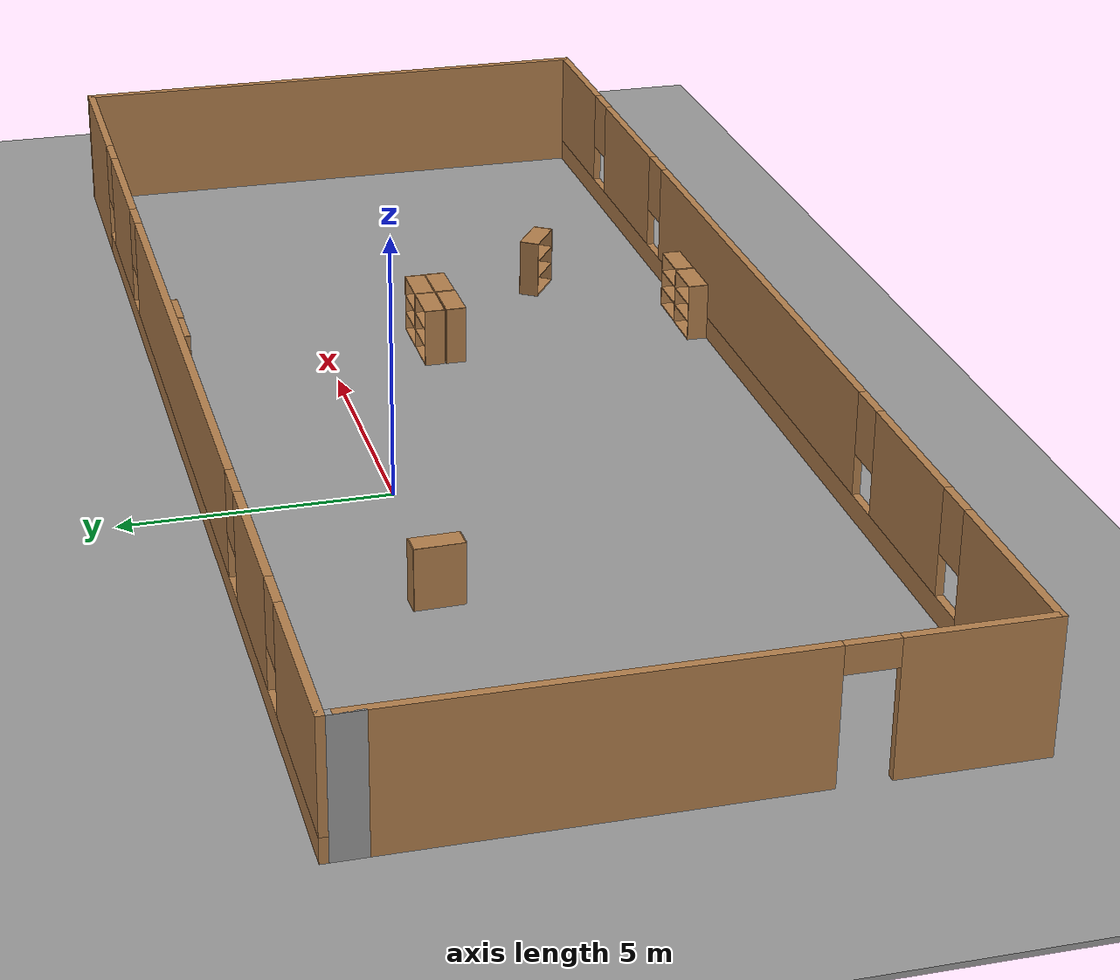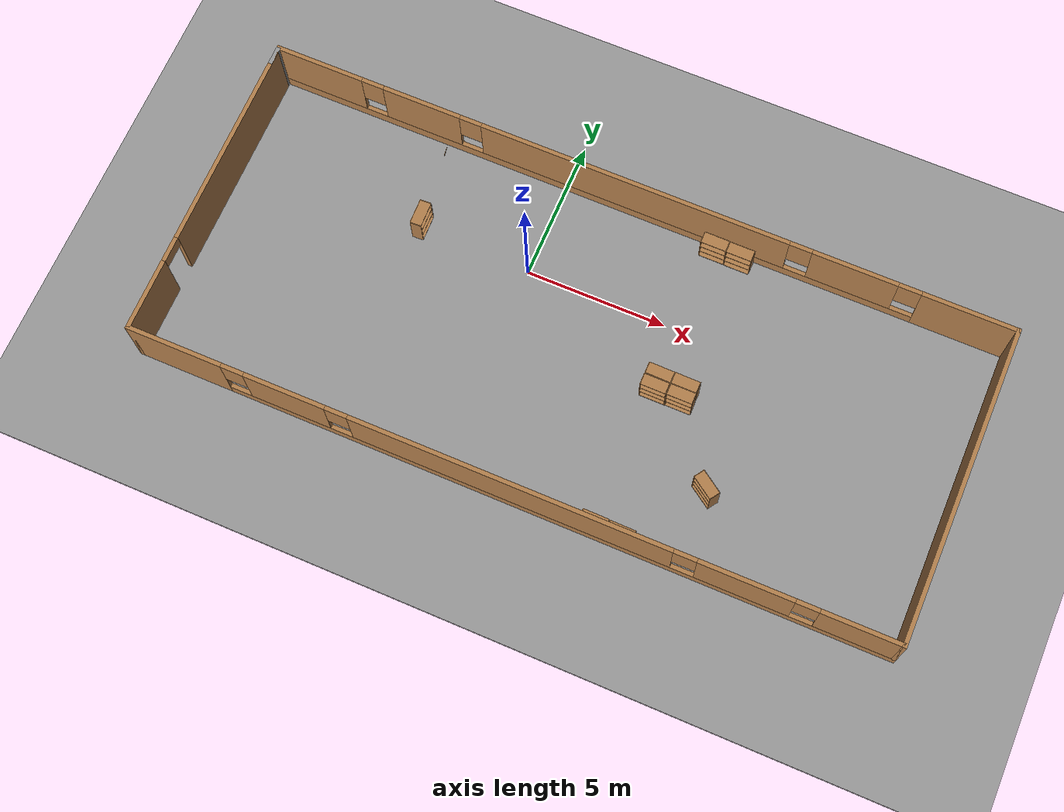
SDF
<sdf version="1.7">
 <world name="default">
  <model name="ground_plane">
   <static>1</static>
   <link name="link">
    <collision name="collision">
     <geometry><plane><normal>0 0 1</normal><size>100 100</size></plane></geometry>
     <surface><friction><ode><mu>100</mu><mu2>50</mu2></ode></friction></surface>
    </collision>
    <visual name="visual">
     <cast_shadows>0</cast_shadows>
     <geometry><plane><normal>0 0 1</normal><size>100 100</size></plane></geometry>
     <material>
      <script><uri>file://media/materials/scripts/gazebo.material</uri><name>Gazebo/Grey</name></script>
     </material>
    </visual>
   </link>
  </model>
  <model name="Library">
   <pose>2.58107 -2.1364 0 0 -0 0</pose>
   <link name="Wall_0">
    <pose>-13.3 -0.125 0 0 -0 -1.5708</pose>
    <visual name="Wall_0_Visual_0">
     <pose>-1.74308 0 1.25 0 -0 0</pose>
     <geometry><box><size>7.51384 0.15 2.5</size></box></geometry>
     <material>
      <script><uri>file://media/materials/scripts/gazebo.material</uri><name>Gazebo/Wood</name></script>
      <ambient>1 1 1 1</ambient>
     </material>
     <meta><layer>0</layer></meta>
    </visual>
    <collision name="Wall_0_Collision_0">
     <geometry><box><size>7.51384 0.15 2.5</size></box></geometry>
     <pose>-1.74308 0 1.25 0 -0 0</pose>
    </collision>
    <visual name="Wall_0_Visual_1">
     <pose>4.20692 0 1.25 0 -0 0</pose>
     <geometry><box><size>2.58616 0.15 2.5</size></box></geometry>
     <material>
      <script><uri>file://media/materials/scripts/gazebo.material</uri><name>Gazebo/Wood</name></script>
      <ambient>1 1 1 1</ambient>
     </material>
     <meta><layer>0</layer></meta>
    </visual>
    <collision name="Wall_0_Collision_1">
     <geometry><box><size>2.58616 0.15 2.5</size></box></geometry>
     <pose>4.20692 0 1.25 0 -0 0</pose>
    </collision>
    <visual name="Wall_0_Visual_2">
     <pose>2.46384 0 2.25 0 -0 0</pose>
     <geometry><box><size>0.9 0.15 0.5</size></box></geometry>
     <material>
      <script><uri>file://media/materials/scripts/gazebo.material</uri><name>Gazebo/Wood</name></script>
      <ambient>1 1 1 1</ambient>
     </material>
     <meta><layer>0</layer></meta>
    </visual>
    <collision name="Wall_0_Collision_2">
     <geometry><box><size>0.9 0.15 0.5</size></box></geometry>
     <pose>2.46384 0 2.25 0 -0 0</pose>
    </collision>
   </link>
   <link name="Wall_1">
    <pose>0 -5.55 0 0 -0 0</pose>
    <visual name="Wall_1_Visual_0">
     <pose>-11.6563 0 1.25 0 -0 0</pose>
     <geometry><box><size>3.43737 0.15 2.5</size></box></geometry>
     <material>
      <script><uri>file://media/materials/scripts/gazebo.material</uri><name>Gazebo/Wood</name></script>
      <ambient>1 1 1 1</ambient>
     </material>
     <meta><layer>0</layer></meta>
    </visual>
    <collision name="Wall_1_Collision_0">
     <geometry><box><size>3.43737 0.15 2.5</size></box></geometry>
     <pose>-11.6563 0 1.25 0 -0 0</pose>
    </collision>
    <visual name="Wall_1_Visual_1">
     <pose>1.71868 0 0.25 0 -0 0</pose>
     <geometry><box><size>23.3126 0.15 0.5</size></box></geometry>
     <material>
      <script><uri>file://media/materials/scripts/gazebo.material</uri><name>Gazebo/Wood</name></script>
      <ambient>1 1 1 1</ambient>
     </material>
     <meta><layer>0</layer></meta>
    </visual>
    <collision name="Wall_1_Collision_1">
     <geometry><box><size>23.3126 0.15 0.5</size></box></geometry>
     <pose>1.71868 0 0.25 0 -0 0</pose>
    </collision>
    <visual name="Wall_1_Visual_2">
     <pose>-7.6969 0 1.5 0 -0 0</pose>
     <geometry><box><size>2.88146 0.15 2</size></box></geometry>
     <material>
      <script><uri>file://media/materials/scripts/gazebo.material</uri><name>Gazebo/Wood</name></script>
      <ambient>1 1 1 1</ambient>
     </material>
     <meta><layer>0</layer></meta>
    </visual>
    <collision name="Wall_1_Collision_2">
     <geometry><box><size>2.88146 0.15 2</size></box></geometry>
     <pose>-7.6969 0 1.5 0 -0 0</pose>
    </collision>
    <visual name="Wall_1_Visual_3">
     <pose>0.131252 0 1.5 0 -0 0</pose>
     <geometry><box><size>11.1749 0.15 2</size></box></geometry>
     <material>
      <script><uri>file://media/materials/scripts/gazebo.material</uri><name>Gazebo/Wood</name></script>
      <ambient>1 1 1 1</ambient>
     </material>
     <meta><layer>0</layer></meta>
    </visual>
    <collision name="Wall_1_Collision_3">
     <geometry><box><size>11.1749 0.15 2</size></box></geometry>
     <pose>0.131252 0 1.5 0 -0 0</pose>
    </collision>
    <visual name="Wall_1_Visual_4">
     <pose>8.14146 0 1.5 0 -0 0</pose>
     <geometry><box><size>3.24556 0.15 2</size></box></geometry>
     <material>
      <script><uri>file://media/materials/scripts/gazebo.material</uri><name>Gazebo/Wood</name></script>
      <ambient>1 1 1 1</ambient>
     </material>
     <meta><layer>0</layer></meta>
    </visual>
    <collision name="Wall_1_Collision_4">
     <geometry><box><size>3.24556 0.15 2</size></box></geometry>
     <pose>8.14146 0 1.5 0 -0 0</pose>
    </collision>
    <visual name="Wall_1_Visual_5">
     <pose>11.9696 0 1.5 0 -0 0</pose>
     <geometry><box><size>2.81076 0.15 2</size></box></geometry>
     <material>
      <script><uri>file://media/materials/scripts/gazebo.material</uri><name>Gazebo/Wood</name></script>
      <ambient>1 1 1 1</ambient>
     </material>
     <meta><layer>0</layer></meta>
    </visual>
    <collision name="Wall_1_Collision_5">
     <geometry><box><size>2.81076 0.15 2</size></box></geometry>
     <pose>11.9696 0 1.5 0 -0 0</pose>
    </collision>
    <visual name="Wall_1_Visual_6">
     <pose>-9.53763 0 1.9 0 -0 0</pose>
     <geometry><box><size>0.8 0.15 1.2</size></box></geometry>
     <material>
      <script><uri>file://media/materials/scripts/gazebo.material</uri><name>Gazebo/Wood</name></script>
      <ambient>1 1 1 1</ambient>
     </material>
     <meta><layer>0</layer></meta>
    </visual>
    <collision name="Wall_1_Collision_6">
     <geometry><box><size>0.8 0.15 1.2</size></box></geometry>
     <pose>-9.53763 0 1.9 0 -0 0</pose>
    </collision>
    <visual name="Wall_1_Visual_7">
     <pose>-5.85617 0 1.9 0 -0 0</pose>
     <geometry><box><size>0.8 0.15 1.2</size></box></geometry>
     <material>
      <script><uri>file://media/materials/scripts/gazebo.material</uri><name>Gazebo/Wood</name></script>
      <ambient>1 1 1 1</ambient>
     </material>
     <meta><layer>0</layer></meta>
    </visual>
    <collision name="Wall_1_Collision_7">
     <geometry><box><size>0.8 0.15 1.2</size></box></geometry>
     <pose>-5.85617 0 1.9 0 -0 0</pose>
    </collision>
    <visual name="Wall_1_Visual_8">
     <pose>6.11868 0 1.9 0 -0 0</pose>
     <geometry><box><size>0.8 0.15 1.2</size></box></geometry>
     <material>
      <script><uri>file://media/materials/scripts/gazebo.material</uri><name>Gazebo/Wood</name></script>
      <ambient>1 1 1 1</ambient>
     </material>
     <meta><layer>0</layer></meta>
    </visual>
    <collision name="Wall_1_Collision_8">
     <geometry><box><size>0.8 0.15 1.2</size></box></geometry>
     <pose>6.11868 0 1.9 0 -0 0</pose>
    </collision>
    <visual name="Wall_1_Visual_9">
     <pose>10.1642 0 1.9 0 -0 0</pose>
     <geometry><box><size>0.8 0.15 1.2</size></box></geometry>
     <material>
      <script><uri>file://media/materials/scripts/gazebo.material</uri><name>Gazebo/Wood</name></script>
      <ambient>1 1 1 1</ambient>
     </material>
     <meta><layer>0</layer></meta>
    </visual>
    <collision name="Wall_1_Collision_9">
     <geometry><box><size>0.8 0.15 1.2</size></box></geometry>
     <pose>10.1642 0 1.9 0 -0 0</pose>
    </collision>
   </link>
   <link name="Wall_2">
    <collision name="Wall_2_Collision">
     <geometry><box><size>11.25 0.15 2.5</size></box></geometry>
     <pose>0 0 1.25 0 -0 0</pose>
    </collision>
    <visual name="Wall_2_Visual">
     <pose>0 0 1.25 0 -0 0</pose>
     <geometry><box><size>11.25 0.15 2.5</size></box></geometry>
     <material>
      <script><uri>file://media/materials/scripts/gazebo.material</uri><name>Gazebo/Wood</name></script>
      <ambient>1 1 1 1</ambient>
     </material>
     <meta><layer>0</layer></meta>
    </visual>
    <pose>13.3 -0 0 0 -0 1.5708</pose>
   </link>
   <link name="Wall_3">
    <pose>0 5.55 0 0 -0 3.14159</pose>
    <visual name="Wall_3_Visual_0">
     <pose>-11.6864 0 1.25 0 -0 0</pose>
     <geometry><box><size>3.37714 0.15 2.5</size></box></geometry>
     <material>
      <script><uri>file://media/materials/scripts/gazebo.material</uri><name>Gazebo/Wood</name></script>
      <ambient>1 1 1 1</ambient>
     </material>
     <meta><layer>0</layer></meta>
    </visual>
    <collision name="Wall_3_Collision_0">
     <geometry><box><size>3.37714 0.15 2.5</size></box></geometry>
     <pose>-11.6864 0 1.25 0 -0 0</pose>
    </collision>
    <visual name="Wall_3_Visual_1">
     <pose>1.68857 0 0.25 0 -0 0</pose>
     <geometry><box><size>23.3729 0.15 0.5</size></box></geometry>
     <material>
      <script><uri>file://media/materials/scripts/gazebo.material</uri><name>Gazebo/Wood</name></script>
      <ambient>1 1 1 1</ambient>
     </material>
     <meta><layer>0</layer></meta>
    </visual>
    <collision name="Wall_3_Collision_1">
     <geometry><box><size>23.3729 0.15 0.5</size></box></geometry>
     <pose>1.68857 0 0.25 0 -0 0</pose>
    </collision>
    <visual name="Wall_3_Visual_2">
     <pose>-7.69644 0 1.5 0 -0 0</pose>
     <geometry><box><size>3.00282 0.15 2</size></box></geometry>
     <material>
      <script><uri>file://media/materials/scripts/gazebo.material</uri><name>Gazebo/Wood</name></script>
      <ambient>1 1 1 1</ambient>
     </material>
     <meta><layer>0</layer></meta>
    </visual>
    <collision name="Wall_3_Collision_2">
     <geometry><box><size>3.00282 0.15 2</size></box></geometry>
     <pose>-7.69644 0 1.5 0 -0 0</pose>
    </collision>
    <visual name="Wall_3_Visual_3">
     <pose>0.151937 0 1.5 0 -0 0</pose>
     <geometry><box><size>11.0939 0.15 2</size></box></geometry>
     <material>
      <script><uri>file://media/materials/scripts/gazebo.material</uri><name>Gazebo/Wood</name></script>
      <ambient>1 1 1 1</ambient>
     </material>
     <meta><layer>0</layer></meta>
    </visual>
    <collision name="Wall_3_Collision_3">
     <geometry><box><size>11.0939 0.15 2</size></box></geometry>
     <pose>0.151937 0 1.5 0 -0 0</pose>
    </collision>
    <visual name="Wall_3_Visual_4">
     <pose>7.91941 0 1.5 0 -0 0</pose>
     <geometry><box><size>2.841 0.15 2</size></box></geometry>
     <material>
      <script><uri>file://media/materials/scripts/gazebo.material</uri><name>Gazebo/Wood</name></script>
      <ambient>1 1 1 1</ambient>
     </material>
     <meta><layer>0</layer></meta>
    </visual>
    <collision name="Wall_3_Collision_4">
     <geometry><box><size>2.841 0.15 2</size></box></geometry>
     <pose>7.91941 0 1.5 0 -0 0</pose>
    </collision>
    <visual name="Wall_3_Visual_5">
     <pose>11.7575 0 1.5 0 -0 0</pose>
     <geometry><box><size>3.23509 0.15 2</size></box></geometry>
     <material>
      <script><uri>file://media/materials/scripts/gazebo.material</uri><name>Gazebo/Wood</name></script>
      <ambient>1 1 1 1</ambient>
     </material>
     <meta><layer>0</layer></meta>
    </visual>
    <collision name="Wall_3_Collision_5">
     <geometry><box><size>3.23509 0.15 2</size></box></geometry>
     <pose>11.7575 0 1.5 0 -0 0</pose>
    </collision>
    <visual name="Wall_3_Visual_6">
     <pose>-9.59786 0 1.9 0 -0 0</pose>
     <geometry><box><size>0.8 0.15 1.2</size></box></geometry>
     <material>
      <script><uri>file://media/materials/scripts/gazebo.material</uri><name>Gazebo/Wood</name></script>
      <ambient>1 1 1 1</ambient>
     </material>
     <meta><layer>0</layer></meta>
    </visual>
    <collision name="Wall_3_Collision_6">
     <geometry><box><size>0.8 0.15 1.2</size></box></geometry>
     <pose>-9.59786 0 1.9 0 -0 0</pose>
    </collision>
    <visual name="Wall_3_Visual_7">
     <pose>-5.79503 0 1.9 0 -0 0</pose>
     <geometry><box><size>0.8 0.15 1.2</size></box></geometry>
     <material>
      <script><uri>file://media/materials/scripts/gazebo.material</uri><name>Gazebo/Wood</name></script>
      <ambient>1 1 1 1</ambient>
     </material>
     <meta><layer>0</layer></meta>
    </visual>
    <collision name="Wall_3_Collision_7">
     <geometry><box><size>0.8 0.15 1.2</size></box></geometry>
     <pose>-5.79503 0 1.9 0 -0 0</pose>
    </collision>
    <visual name="Wall_3_Visual_8">
     <pose>6.09891 0 1.9 0 -0 0</pose>
     <geometry><box><size>0.8 0.15 1.2</size></box></geometry>
     <material>
      <script><uri>file://media/materials/scripts/gazebo.material</uri><name>Gazebo/Wood</name></script>
      <ambient>1 1 1 1</ambient>
     </material>
     <meta><layer>0</layer></meta>
    </visual>
    <collision name="Wall_3_Collision_8">
     <geometry><box><size>0.8 0.15 1.2</size></box></geometry>
     <pose>6.09891 0 1.9 0 -0 0</pose>
    </collision>
    <visual name="Wall_3_Visual_9">
     <pose>9.73991 0 1.9 0 -0 0</pose>
     <geometry><box><size>0.8 0.15 1.2</size></box></geometry>
     <material>
      <script><uri>file://media/materials/scripts/gazebo.material</uri><name>Gazebo/Wood</name></script>
      <ambient>1 1 1 1</ambient>
     </material>
     <meta><layer>0</layer></meta>
    </visual>
    <collision name="Wall_3_Collision_9">
     <geometry><box><size>0.8 0.15 1.2</size></box></geometry>
     <pose>9.73991 0 1.9 0 -0 0</pose>
    </collision>
   </link>
   <link name="Wall_4">
    <collision name="Wall_4_Collision">
     <geometry><box><size>0.75 0.15 2.5</size></box></geometry>
     <pose>0 0 1.25 0 -0 0</pose>
    </collision>
    <visual name="Wall_4_Visual">
     <pose>0 0 1.25 0 -0 0</pose>
     <geometry><box><size>0.75 0.15 2.5</size></box></geometry>
     <material>
      <script><uri>file://media/materials/scripts/gazebo.material</uri><name>Gazebo/Grey</name></script>
      <ambient>1 1 1 1</ambient>
     </material>
     <meta><layer>0</layer></meta>
    </visual>
    <pose>-13.3 5.25 0 0 -0 -1.5708</pose>
   </link>
   <static>1</static>
  </model>
  <model name="bookshelf">
   <static>1</static>
   <link name="link">
    <inertial><mass>1</mass></inertial>
    <collision name="back">
     <pose>0 0.005 0.6 0 -0 0</pose>
     <geometry><box><size>0.9 0.01 1.2</size></box></geometry>
    </collision>
    <visual name="visual1">
     <pose>0 0.005 0.6 0 -0 0</pose>
     <geometry><box><size>0.9 0.01 1.2</size></box></geometry>
     <material>
      <script><uri>file://media/materials/scripts/gazebo.material</uri><name>Gazebo/Wood</name></script>
     </material>
    </visual>
    <collision name="left_side">
     <pose>0.45 -0.195 0.6 0 -0 0</pose>
     <geometry><box><size>0.02 0.4 1.2</size></box></geometry>
    </collision>
    <visual name="visual2">
     <pose>0.45 -0.195 0.6 0 -0 0</pose>
     <geometry><box><size>0.02 0.4 1.2</size></box></geometry>
     <material>
      <script><uri>file://media/materials/scripts/gazebo.material</uri><name>Gazebo/Wood</name></script>
     </material>
    </visual>
    <collision name="right_side">
     <pose>-0.45 -0.195 0.6 0 -0 0</pose>
     <geometry><box><size>0.02 0.4 1.2</size></box></geometry>
    </collision>
    <visual name="visual3">
     <pose>-0.45 -0.195 0.6 0 -0 0</pose>
     <geometry><box><size>0.02 0.4 1.2</size></box></geometry>
     <material>
      <script><uri>file://media/materials/scripts/gazebo.material</uri><name>Gazebo/Wood</name></script>
     </material>
    </visual>
    <collision name="bottom">
     <pose>0 -0.195 0.03 0 -0 0</pose>
     <geometry><box><size>0.88 0.4 0.06</size></box></geometry>
    </collision>
    <visual name="visual4">
     <pose>0 -0.195 0.03 0 -0 0</pose>
     <geometry><box><size>0.88 0.4 0.06</size></box></geometry>
     <material>
      <script><uri>file://media/materials/scripts/gazebo.material</uri><name>Gazebo/Wood</name></script>
     </material>
    </visual>
    <collision name="top">
     <pose>0 -0.195 1.19 0 -0 0</pose>
     <geometry><box><size>0.88 0.4 0.02</size></box></geometry>
    </collision>
    <visual name="visual5">
     <pose>0 -0.195 1.19 0 -0 0</pose>
     <geometry><box><size>0.88 0.4 0.02</size></box></geometry>
     <material>
      <script><uri>file://media/materials/scripts/gazebo.material</uri><name>Gazebo/Wood</name></script>
     </material>
    </visual>
    <collision name="low_shelf">
     <pose>0 -0.195 0.43 0 -0 0</pose>
     <geometry><box><size>0.88 0.4 0.02</size></box></geometry>
    </collision>
    <visual name="visual6">
     <pose>0 -0.195 0.43 0 -0 0</pose>
     <geometry><box><size>0.88 0.4 0.02</size></box></geometry>
     <material>
      <script><uri>file://media/materials/scripts/gazebo.material</uri><name>Gazebo/Wood</name></script>
     </material>
    </visual>
    <collision name="high_shelf">
     <pose>0 -0.195 0.8 0 -0 0</pose>
     <geometry><box><size>0.88 0.4 0.02</size></box></geometry>
    </collision>
    <visual name="visual7">
     <pose>0 -0.195 0.8 0 -0 0</pose>
     <geometry><box><size>0.88 0.4 0.02</size></box></geometry>
     <material>
      <script><uri>file://media/materials/scripts/gazebo.material</uri><name>Gazebo/Wood</name></script>
     </material>
    </visual>
   </link>
   <pose>6.50028 3.23644 0.012624 0 -0 0</pose>
  </model>
  <model name="bookshelf_clone">
   <static>1</static>
   <link name="link">
    <inertial><mass>1</mass></inertial>
    <collision name="back">
     <pose>0 0.005 0.6 0 -0 0</pose>
     <geometry><box><size>0.9 0.01 1.2</size></box></geometry>
    </collision>
    <visual name="visual1">
     <pose>0 0.005 0.6 0 -0 0</pose>
     <geometry><box><size>0.9 0.01 1.2</size></box></geometry>
     <material>
      <script><uri>file://media/materials/scripts/gazebo.material</uri><name>Gazebo/Wood</name></script>
     </material>
    </visual>
    <collision name="left_side">
     <pose>0.45 -0.195 0.6 0 -0 0</pose>
     <geometry><box><size>0.02 0.4 1.2</size></box></geometry>
    </collision>
    <visual name="visual2">
     <pose>0.45 -0.195 0.6 0 -0 0</pose>
     <geometry><box><size>0.02 0.4 1.2</size></box></geometry>
     <material>
      <script><uri>file://media/materials/scripts/gazebo.material</uri><name>Gazebo/Wood</name></script>
     </material>
    </visual>
    <collision name="right_side">
     <pose>-0.45 -0.195 0.6 0 -0 0</pose>
     <geometry><box><size>0.02 0.4 1.2</size></box></geometry>
    </collision>
    <visual name="visual3">
     <pose>-0.45 -0.195 0.6 0 -0 0</pose>
     <geometry><box><size>0.02 0.4 1.2</size></box></geometry>
     <material>
      <script><uri>file://media/materials/scripts/gazebo.material</uri><name>Gazebo/Wood</name></script>
     </material>
    </visual>
    <collision name="bottom">
     <pose>0 -0.195 0.03 0 -0 0</pose>
     <geometry><box><size>0.88 0.4 0.06</size></box></geometry>
    </collision>
    <visual name="visual4">
     <pose>0 -0.195 0.03 0 -0 0</pose>
     <geometry><box><size>0.88 0.4 0.06</size></box></geometry>
     <material>
      <script><uri>file://media/materials/scripts/gazebo.material</uri><name>Gazebo/Wood</name></script>
     </material>
    </visual>
    <collision name="top">
     <pose>0 -0.195 1.19 0 -0 0</pose>
     <geometry><box><size>0.88 0.4 0.02</size></box></geometry>
    </collision>
    <visual name="visual5">
     <pose>0 -0.195 1.19 0 -0 0</pose>
     <geometry><box><size>0.88 0.4 0.02</size></box></geometry>
     <material>
      <script><uri>file://media/materials/scripts/gazebo.material</uri><name>Gazebo/Wood</name></script>
     </material>
    </visual>
    <collision name="low_shelf">
     <pose>0 -0.195 0.43 0 -0 0</pose>
     <geometry><box><size>0.88 0.4 0.02</size></box></geometry>
    </collision>
    <visual name="visual6">
     <pose>0 -0.195 0.43 0 -0 0</pose>
     <geometry><box><size>0.88 0.4 0.02</size></box></geometry>
     <material>
      <script><uri>file://media/materials/scripts/gazebo.material</uri><name>Gazebo/Wood</name></script>
     </material>
    </visual>
    <collision name="high_shelf">
     <pose>0 -0.195 0.8 0 -0 0</pose>
     <geometry><box><size>0.88 0.4 0.02</size></box></geometry>
    </collision>
    <visual name="visual7">
     <pose>0 -0.195 0.8 0 -0 0</pose>
     <geometry><box><size>0.88 0.4 0.02</size></box></geometry>
     <material>
      <script><uri>file://media/materials/scripts/gazebo.material</uri><name>Gazebo/Wood</name></script>
     </material>
    </visual>
   </link>
   <pose>5.58313 3.24733 0.012624 0 -0 0</pose>
  </model>
  <model name="ground_plane_0">
   <static>1</static>
   <link name="link">
    <collision name="collision">
     <geometry><plane><normal>0 0 1</normal><size>100 100</size></plane></geometry>
     <surface>
      <contact><collide_bitmask>65535</collide_bitmask></contact>
      <friction><ode><mu>100</mu><mu2>50</mu2></ode></friction>
     </surface>
    </collision>
    <visual name="visual">
     <cast_shadows>0</cast_shadows>
     <geometry><plane><normal>0 0 1</normal><size>100 100</size></plane></geometry>
     <material>
      <script><uri>file://media/materials/scripts/gazebo.material</uri><name>Gazebo/Grey</name></script>
     </material>
    </visual>
   </link>
   <pose>-2.55958 1.44132 0 0 -0 0</pose>
  </model>
  <model name="bookshelf_clone_clone">
   <static>1</static>
   <link name="link">
    <inertial><mass>1</mass></inertial>
    <collision name="back">
     <pose>0 0.005 0.6 0 -0 0</pose>
     <geometry><box><size>0.9 0.01 1.2</size></box></geometry>
    </collision>
    <visual name="visual1">
     <pose>0 0.005 0.6 0 -0 0</pose>
     <geometry><box><size>0.9 0.01 1.2</size></box></geometry>
     <material>
      <script><uri>file://media/materials/scripts/gazebo.material</uri><name>Gazebo/Wood</name></script>
     </material>
    </visual>
    <collision name="left_side">
     <pose>0.45 -0.195 0.6 0 -0 0</pose>
     <geometry><box><size>0.02 0.4 1.2</size></box></geometry>
    </collision>
    <visual name="visual2">
     <pose>0.45 -0.195 0.6 0 -0 0</pose>
     <geometry><box><size>0.02 0.4 1.2</size></box></geometry>
     <material>
      <script><uri>file://media/materials/scripts/gazebo.material</uri><name>Gazebo/Wood</name></script>
     </material>
    </visual>
    <collision name="right_side">
     <pose>-0.45 -0.195 0.6 0 -0 0</pose>
     <geometry><box><size>0.02 0.4 1.2</size></box></geometry>
    </collision>
    <visual name="visual3">
     <pose>-0.45 -0.195 0.6 0 -0 0</pose>
     <geometry><box><size>0.02 0.4 1.2</size></box></geometry>
     <material>
      <script><uri>file://media/materials/scripts/gazebo.material</uri><name>Gazebo/Wood</name></script>
     </material>
    </visual>
    <collision name="bottom">
     <pose>0 -0.195 0.03 0 -0 0</pose>
     <geometry><box><size>0.88 0.4 0.06</size></box></geometry>
    </collision>
    <visual name="visual4">
     <pose>0 -0.195 0.03 0 -0 0</pose>
     <geometry><box><size>0.88 0.4 0.06</size></box></geometry>
     <material>
      <script><uri>file://media/materials/scripts/gazebo.material</uri><name>Gazebo/Wood</name></script>
     </material>
    </visual>
    <collision name="top">
     <pose>0 -0.195 1.19 0 -0 0</pose>
     <geometry><box><size>0.88 0.4 0.02</size></box></geometry>
    </collision>
    <visual name="visual5">
     <pose>0 -0.195 1.19 0 -0 0</pose>
     <geometry><box><size>0.88 0.4 0.02</size></box></geometry>
     <material>
      <script><uri>file://media/materials/scripts/gazebo.material</uri><name>Gazebo/Wood</name></script>
     </material>
    </visual>
    <collision name="low_shelf">
     <pose>0 -0.195 0.43 0 -0 0</pose>
     <geometry><box><size>0.88 0.4 0.02</size></box></geometry>
    </collision>
    <visual name="visual6">
     <pose>0 -0.195 0.43 0 -0 0</pose>
     <geometry><box><size>0.88 0.4 0.02</size></box></geometry>
     <material>
      <script><uri>file://media/materials/scripts/gazebo.material</uri><name>Gazebo/Wood</name></script>
     </material>
    </visual>
    <collision name="high_shelf">
     <pose>0 -0.195 0.8 0 -0 0</pose>
     <geometry><box><size>0.88 0.4 0.02</size></box></geometry>
    </collision>
    <visual name="visual7">
     <pose>0 -0.195 0.8 0 -0 0</pose>
     <geometry><box><size>0.88 0.4 0.02</size></box></geometry>
     <material>
      <script><uri>file://media/materials/scripts/gazebo.material</uri><name>Gazebo/Wood</name></script>
     </material>
    </visual>
   </link>
   <pose>5.52396 -7.61033 0.012624 0 -0 3.13078</pose>
  </model>
  <model name="bookshelf_clone_clone_clone">
   <static>1</static>
   <link name="link">
    <inertial><mass>1</mass></inertial>
    <collision name="back">
     <pose>0 0.005 0.6 0 -0 0</pose>
     <geometry><box><size>0.9 0.01 1.2</size></box></geometry>
    </collision>
    <visual name="visual1">
     <pose>0 0.005 0.6 0 -0 0</pose>
     <geometry><box><size>0.9 0.01 1.2</size></box></geometry>
     <material>
      <script><uri>file://media/materials/scripts/gazebo.material</uri><name>Gazebo/Wood</name></script>
     </material>
    </visual>
    <collision name="left_side">
     <pose>0.45 -0.195 0.6 0 -0 0</pose>
     <geometry><box><size>0.02 0.4 1.2</size></box></geometry>
    </collision>
    <visual name="visual2">
     <pose>0.45 -0.195 0.6 0 -0 0</pose>
     <geometry><box><size>0.02 0.4 1.2</size></box></geometry>
     <material>
      <script><uri>file://media/materials/scripts/gazebo.material</uri><name>Gazebo/Wood</name></script>
     </material>
    </visual>
    <collision name="right_side">
     <pose>-0.45 -0.195 0.6 0 -0 0</pose>
     <geometry><box><size>0.02 0.4 1.2</size></box></geometry>
    </collision>
    <visual name="visual3">
     <pose>-0.45 -0.195 0.6 0 -0 0</pose>
     <geometry><box><size>0.02 0.4 1.2</size></box></geometry>
     <material>
      <script><uri>file://media/materials/scripts/gazebo.material</uri><name>Gazebo/Wood</name></script>
     </material>
    </visual>
    <collision name="bottom">
     <pose>0 -0.195 0.03 0 -0 0</pose>
     <geometry><box><size>0.88 0.4 0.06</size></box></geometry>
    </collision>
    <visual name="visual4">
     <pose>0 -0.195 0.03 0 -0 0</pose>
     <geometry><box><size>0.88 0.4 0.06</size></box></geometry>
     <material>
      <script><uri>file://media/materials/scripts/gazebo.material</uri><name>Gazebo/Wood</name></script>
     </material>
    </visual>
    <collision name="top">
     <pose>0 -0.195 1.19 0 -0 0</pose>
     <geometry><box><size>0.88 0.4 0.02</size></box></geometry>
    </collision>
    <visual name="visual5">
     <pose>0 -0.195 1.19 0 -0 0</pose>
     <geometry><box><size>0.88 0.4 0.02</size></box></geometry>
     <material>
      <script><uri>file://media/materials/scripts/gazebo.material</uri><name>Gazebo/Wood</name></script>
     </material>
    </visual>
    <collision name="low_shelf">
     <pose>0 -0.195 0.43 0 -0 0</pose>
     <geometry><box><size>0.88 0.4 0.02</size></box></geometry>
    </collision>
    <visual name="visual6">
     <pose>0 -0.195 0.43 0 -0 0</pose>
     <geometry><box><size>0.88 0.4 0.02</size></box></geometry>
     <material>
      <script><uri>file://media/materials/scripts/gazebo.material</uri><name>Gazebo/Wood</name></script>
     </material>
    </visual>
    <collision name="high_shelf">
     <pose>0 -0.195 0.8 0 -0 0</pose>
     <geometry><box><size>0.88 0.4 0.02</size></box></geometry>
    </collision>
    <visual name="visual7">
     <pose>0 -0.195 0.8 0 -0 0</pose>
     <geometry><box><size>0.88 0.4 0.02</size></box></geometry>
     <material>
      <script><uri>file://media/materials/scripts/gazebo.material</uri><name>Gazebo/Wood</name></script>
     </material>
    </visual>
   </link>
   <pose>6.45684 -7.62988 0.012624 0 -0 3.13078</pose>
  </model>
  <model name="wooden_board_clone_2">
   <link name="base">
    <pose>0 0 0.00523 0 -0 0</pose>
    <inertial>
     <mass>0.2765</mass>
     <inertia>
      <ixx>0.0025148</ixx>
      <ixy>0</ixy>
      <ixz>0</ixz>
      <iyy>0.00024037</iyy>
      <iyz>0</iyz>
      <izz>0.00275013</izz>
     </inertia>
    </inertial>
    <collision name="collision">
     <geometry><box><size>0.1016 0.3302 0.01046</size></box></geometry>
     <surface>
      <contact>
       <poissons_ratio>0.347</poissons_ratio>
       <elastic_modulus>8.8e+09</elastic_modulus>
       <ode><kp>100000</kp><kd>100</kd><max_vel>100</max_vel><min_depth>0.001</min_depth></ode>
      </contact>
      <friction>
       <torsional>
        <coefficient>1</coefficient>
        <use_patch_radius>0</use_patch_radius>
        <surface_radius>0.01</surface_radius>
       </torsional>
      </friction>
     </surface>
    </collision>
    <visual name="visual">
     <geometry><box><size>0.1016 0.3302 0.01046</size></box></geometry>
     <material>
      <script><uri>file://media/materials/scripts/gazebo.material</uri><name>Gazebo/Wood</name></script>
     </material>
    </visual>
    <visual name="tee_nut_1">
     <pose>0 -0.116 0 0 -0 0</pose>
     <geometry><cylinder><radius>0.00635</radius><length>0.0105646</length></cylinder></geometry>
     <material>
      <script><uri>file://media/materials/scripts/gazebo.material</uri><name>Gazebo/Grey</name></script>
     </material>
    </visual>
    <visual name="tee_nut_2">
     <pose>0 -0.038 0 0 -0 0</pose>
     <geometry><cylinder><radius>0.00635</radius><length>0.0105646</length></cylinder></geometry>
     <material>
      <script><uri>file://media/materials/scripts/gazebo.material</uri><name>Gazebo/Grey</name></script>
     </material>
    </visual>
    <visual name="tee_nut_3">
     <pose>0 0.038 0 0 -0 0</pose>
     <geometry><cylinder><radius>0.00635</radius><length>0.0105646</length></cylinder></geometry>
     <material>
      <script><uri>file://media/materials/scripts/gazebo.material</uri><name>Gazebo/Grey</name></script>
     </material>
    </visual>
    <visual name="tee_nut_4">
     <pose>0 0.116 0 0 -0 0</pose>
     <geometry><cylinder><radius>0.00635</radius><length>0.0105646</length></cylinder></geometry>
     <material>
      <script><uri>file://media/materials/scripts/gazebo.material</uri><name>Gazebo/Grey</name></script>
     </material>
    </visual>
   </link>
   <pose>-4.46027 3.04524 0.082666 2.89206 1.51041 3.03154</pose>
  </model>
  <model name="bookshelf_clone_0_clone_1_clone">
   <static>1</static>
   <link name="link">
    <inertial><mass>1</mass></inertial>
    <collision name="back">
     <pose>0 0.005 0.6 0 -0 0</pose>
     <geometry><box><size>0.9 0.01 1.2</size></box></geometry>
    </collision>
    <visual name="visual1">
     <pose>0 0.005 0.6 0 -0 0</pose>
     <geometry><box><size>0.9 0.01 1.2</size></box></geometry>
     <material>
      <script><uri>file://media/materials/scripts/gazebo.material</uri><name>Gazebo/Wood</name></script>
     </material>
    </visual>
    <collision name="left_side">
     <pose>0.45 -0.195 0.6 0 -0 0</pose>
     <geometry><box><size>0.02 0.4 1.2</size></box></geometry>
    </collision>
    <visual name="visual2">
     <pose>0.45 -0.195 0.6 0 -0 0</pose>
     <geometry><box><size>0.02 0.4 1.2</size></box></geometry>
     <material>
      <script><uri>file://media/materials/scripts/gazebo.material</uri><name>Gazebo/Wood</name></script>
     </material>
    </visual>
    <collision name="right_side">
     <pose>-0.45 -0.195 0.6 0 -0 0</pose>
     <geometry><box><size>0.02 0.4 1.2</size></box></geometry>
    </collision>
    <visual name="visual3">
     <pose>-0.45 -0.195 0.6 0 -0 0</pose>
     <geometry><box><size>0.02 0.4 1.2</size></box></geometry>
     <material>
      <script><uri>file://media/materials/scripts/gazebo.material</uri><name>Gazebo/Wood</name></script>
     </material>
    </visual>
    <collision name="bottom">
     <pose>0 -0.195 0.03 0 -0 0</pose>
     <geometry><box><size>0.88 0.4 0.06</size></box></geometry>
    </collision>
    <visual name="visual4">
     <pose>0 -0.195 0.03 0 -0 0</pose>
     <geometry><box><size>0.88 0.4 0.06</size></box></geometry>
     <material>
      <script><uri>file://media/materials/scripts/gazebo.material</uri><name>Gazebo/Wood</name></script>
     </material>
    </visual>
    <collision name="top">
     <pose>0 -0.195 1.19 0 -0 0</pose>
     <geometry><box><size>0.88 0.4 0.02</size></box></geometry>
    </collision>
    <visual name="visual5">
     <pose>0 -0.195 1.19 0 -0 0</pose>
     <geometry><box><size>0.88 0.4 0.02</size></box></geometry>
     <material>
      <script><uri>file://media/materials/scripts/gazebo.material</uri><name>Gazebo/Wood</name></script>
     </material>
    </visual>
    <collision name="low_shelf">
     <pose>0 -0.195 0.43 0 -0 0</pose>
     <geometry><box><size>0.88 0.4 0.02</size></box></geometry>
    </collision>
    <visual name="visual6">
     <pose>0 -0.195 0.43 0 -0 0</pose>
     <geometry><box><size>0.88 0.4 0.02</size></box></geometry>
     <material>
      <script><uri>file://media/materials/scripts/gazebo.material</uri><name>Gazebo/Wood</name></script>
     </material>
    </visual>
    <collision name="high_shelf">
     <pose>0 -0.195 0.8 0 -0 0</pose>
     <geometry><box><size>0.88 0.4 0.02</size></box></geometry>
    </collision>
    <visual name="visual7">
     <pose>0 -0.195 0.8 0 -0 0</pose>
     <geometry><box><size>0.88 0.4 0.02</size></box></geometry>
     <material>
      <script><uri>file://media/materials/scripts/gazebo.material</uri><name>Gazebo/Wood</name></script>
     </material>
    </visual>
   </link>
   <pose>5.60363 -2.22371 0.012624 0 -0 0</pose>
  </model>
  <model name="bookshelf_clone_0_clone_1_clone_0">
   <static>1</static>
   <link name="link">
    <inertial><mass>1</mass></inertial>
    <collision name="back">
     <pose>0 0.005 0.6 0 -0 0</pose>
     <geometry><box><size>0.9 0.01 1.2</size></box></geometry>
    </collision>
    <visual name="visual1">
     <pose>0 0.005 0.6 0 -0 0</pose>
     <geometry><box><size>0.9 0.01 1.2</size></box></geometry>
     <material>
      <script><uri>file://media/materials/scripts/gazebo.material</uri><name>Gazebo/Wood</name></script>
     </material>
    </visual>
    <collision name="left_side">
     <pose>0.45 -0.195 0.6 0 -0 0</pose>
     <geometry><box><size>0.02 0.4 1.2</size></box></geometry>
    </collision>
    <visual name="visual2">
     <pose>0.45 -0.195 0.6 0 -0 0</pose>
     <geometry><box><size>0.02 0.4 1.2</size></box></geometry>
     <material>
      <script><uri>file://media/materials/scripts/gazebo.material</uri><name>Gazebo/Wood</name></script>
     </material>
    </visual>
    <collision name="right_side">
     <pose>-0.45 -0.195 0.6 0 -0 0</pose>
     <geometry><box><size>0.02 0.4 1.2</size></box></geometry>
    </collision>
    <visual name="visual3">
     <pose>-0.45 -0.195 0.6 0 -0 0</pose>
     <geometry><box><size>0.02 0.4 1.2</size></box></geometry>
     <material>
      <script><uri>file://media/materials/scripts/gazebo.material</uri><name>Gazebo/Wood</name></script>
     </material>
    </visual>
    <collision name="bottom">
     <pose>0 -0.195 0.03 0 -0 0</pose>
     <geometry><box><size>0.88 0.4 0.06</size></box></geometry>
    </collision>
    <visual name="visual4">
     <pose>0 -0.195 0.03 0 -0 0</pose>
     <geometry><box><size>0.88 0.4 0.06</size></box></geometry>
     <material>
      <script><uri>file://media/materials/scripts/gazebo.material</uri><name>Gazebo/Wood</name></script>
     </material>
    </visual>
    <collision name="top">
     <pose>0 -0.195 1.19 0 -0 0</pose>
     <geometry><box><size>0.88 0.4 0.02</size></box></geometry>
    </collision>
    <visual name="visual5">
     <pose>0 -0.195 1.19 0 -0 0</pose>
     <geometry><box><size>0.88 0.4 0.02</size></box></geometry>
     <material>
      <script><uri>file://media/materials/scripts/gazebo.material</uri><name>Gazebo/Wood</name></script>
     </material>
    </visual>
    <collision name="low_shelf">
     <pose>0 -0.195 0.43 0 -0 0</pose>
     <geometry><box><size>0.88 0.4 0.02</size></box></geometry>
    </collision>
    <visual name="visual6">
     <pose>0 -0.195 0.43 0 -0 0</pose>
     <geometry><box><size>0.88 0.4 0.02</size></box></geometry>
     <material>
      <script><uri>file://media/materials/scripts/gazebo.material</uri><name>Gazebo/Wood</name></script>
     </material>
    </visual>
    <collision name="high_shelf">
     <pose>0 -0.195 0.8 0 -0 0</pose>
     <geometry><box><size>0.88 0.4 0.02</size></box></geometry>
    </collision>
    <visual name="visual7">
     <pose>0 -0.195 0.8 0 -0 0</pose>
     <geometry><box><size>0.88 0.4 0.02</size></box></geometry>
     <material>
      <script><uri>file://media/materials/scripts/gazebo.material</uri><name>Gazebo/Wood</name></script>
     </material>
    </visual>
   </link>
   <pose>6.53127 -2.2171 0.012624 0 -0 0</pose>
  </model>
  <model name="bookshelf_clone_clone_clone_1_clone_0_clone">
   <static>1</static>
   <link name="link">
    <inertial><mass>1</mass></inertial>
    <collision name="back">
     <pose>0 0.005 0.6 0 -0 0</pose>
     <geometry><box><size>0.9 0.01 1.2</size></box></geometry>
    </collision>
    <visual name="visual1">
     <pose>0 0.005 0.6 0 -0 0</pose>
     <geometry><box><size>0.9 0.01 1.2</size></box></geometry>
     <material>
      <script><uri>file://media/materials/scripts/gazebo.material</uri><name>Gazebo/Wood</name></script>
     </material>
    </visual>
    <collision name="left_side">
     <pose>0.45 -0.195 0.6 0 -0 0</pose>
     <geometry><box><size>0.02 0.4 1.2</size></box></geometry>
    </collision>
    <visual name="visual2">
     <pose>0.45 -0.195 0.6 0 -0 0</pose>
     <geometry><box><size>0.02 0.4 1.2</size></box></geometry>
     <material>
      <script><uri>file://media/materials/scripts/gazebo.material</uri><name>Gazebo/Wood</name></script>
     </material>
    </visual>
    <collision name="right_side">
     <pose>-0.45 -0.195 0.6 0 -0 0</pose>
     <geometry><box><size>0.02 0.4 1.2</size></box></geometry>
    </collision>
    <visual name="visual3">
     <pose>-0.45 -0.195 0.6 0 -0 0</pose>
     <geometry><box><size>0.02 0.4 1.2</size></box></geometry>
     <material>
      <script><uri>file://media/materials/scripts/gazebo.material</uri><name>Gazebo/Wood</name></script>
     </material>
    </visual>
    <collision name="bottom">
     <pose>0 -0.195 0.03 0 -0 0</pose>
     <geometry><box><size>0.88 0.4 0.06</size></box></geometry>
    </collision>
    <visual name="visual4">
     <pose>0 -0.195 0.03 0 -0 0</pose>
     <geometry><box><size>0.88 0.4 0.06</size></box></geometry>
     <material>
      <script><uri>file://media/materials/scripts/gazebo.material</uri><name>Gazebo/Wood</name></script>
     </material>
    </visual>
    <collision name="top">
     <pose>0 -0.195 1.19 0 -0 0</pose>
     <geometry><box><size>0.88 0.4 0.02</size></box></geometry>
    </collision>
    <visual name="visual5">
     <pose>0 -0.195 1.19 0 -0 0</pose>
     <geometry><box><size>0.88 0.4 0.02</size></box></geometry>
     <material>
      <script><uri>file://media/materials/scripts/gazebo.material</uri><name>Gazebo/Wood</name></script>
     </material>
    </visual>
    <collision name="low_shelf">
     <pose>0 -0.195 0.43 0 -0 0</pose>
     <geometry><box><size>0.88 0.4 0.02</size></box></geometry>
    </collision>
    <visual name="visual6">
     <pose>0 -0.195 0.43 0 -0 0</pose>
     <geometry><box><size>0.88 0.4 0.02</size></box></geometry>
     <material>
      <script><uri>file://media/materials/scripts/gazebo.material</uri><name>Gazebo/Wood</name></script>
     </material>
    </visual>
    <collision name="high_shelf">
     <pose>0 -0.195 0.8 0 -0 0</pose>
     <geometry><box><size>0.88 0.4 0.02</size></box></geometry>
    </collision>
    <visual name="visual7">
     <pose>0 -0.195 0.8 0 -0 0</pose>
     <geometry><box><size>0.88 0.4 0.02</size></box></geometry>
     <material>
      <script><uri>file://media/materials/scripts/gazebo.material</uri><name>Gazebo/Wood</name></script>
     </material>
    </visual>
   </link>
   <pose>5.60608 -2.18659 0.012624 0 -0 3.13078</pose>
  </model>
  <model name="bookshelf_clone_clone_clone_1_clone_0_clone_0">
   <static>1</static>
   <link name="link">
    <inertial><mass>1</mass></inertial>
    <collision name="back">
     <pose>0 0.005 0.6 0 -0 0</pose>
     <geometry><box><size>0.9 0.01 1.2</size></box></geometry>
    </collision>
    <visual name="visual1">
     <pose>0 0.005 0.6 0 -0 0</pose>
     <geometry><box><size>0.9 0.01 1.2</size></box></geometry>
     <material>
      <script><uri>file://media/materials/scripts/gazebo.material</uri><name>Gazebo/Wood</name></script>
     </material>
    </visual>
    <collision name="left_side">
     <pose>0.45 -0.195 0.6 0 -0 0</pose>
     <geometry><box><size>0.02 0.4 1.2</size></box></geometry>
    </collision>
    <visual name="visual2">
     <pose>0.45 -0.195 0.6 0 -0 0</pose>
     <geometry><box><size>0.02 0.4 1.2</size></box></geometry>
     <material>
      <script><uri>file://media/materials/scripts/gazebo.material</uri><name>Gazebo/Wood</name></script>
     </material>
    </visual>
    <collision name="right_side">
     <pose>-0.45 -0.195 0.6 0 -0 0</pose>
     <geometry><box><size>0.02 0.4 1.2</size></box></geometry>
    </collision>
    <visual name="visual3">
     <pose>-0.45 -0.195 0.6 0 -0 0</pose>
     <geometry><box><size>0.02 0.4 1.2</size></box></geometry>
     <material>
      <script><uri>file://media/materials/scripts/gazebo.material</uri><name>Gazebo/Wood</name></script>
     </material>
    </visual>
    <collision name="bottom">
     <pose>0 -0.195 0.03 0 -0 0</pose>
     <geometry><box><size>0.88 0.4 0.06</size></box></geometry>
    </collision>
    <visual name="visual4">
     <pose>0 -0.195 0.03 0 -0 0</pose>
     <geometry><box><size>0.88 0.4 0.06</size></box></geometry>
     <material>
      <script><uri>file://media/materials/scripts/gazebo.material</uri><name>Gazebo/Wood</name></script>
     </material>
    </visual>
    <collision name="top">
     <pose>0 -0.195 1.19 0 -0 0</pose>
     <geometry><box><size>0.88 0.4 0.02</size></box></geometry>
    </collision>
    <visual name="visual5">
     <pose>0 -0.195 1.19 0 -0 0</pose>
     <geometry><box><size>0.88 0.4 0.02</size></box></geometry>
     <material>
      <script><uri>file://media/materials/scripts/gazebo.material</uri><name>Gazebo/Wood</name></script>
     </material>
    </visual>
    <collision name="low_shelf">
     <pose>0 -0.195 0.43 0 -0 0</pose>
     <geometry><box><size>0.88 0.4 0.02</size></box></geometry>
    </collision>
    <visual name="visual6">
     <pose>0 -0.195 0.43 0 -0 0</pose>
     <geometry><box><size>0.88 0.4 0.02</size></box></geometry>
     <material>
      <script><uri>file://media/materials/scripts/gazebo.material</uri><name>Gazebo/Wood</name></script>
     </material>
    </visual>
    <collision name="high_shelf">
     <pose>0 -0.195 0.8 0 -0 0</pose>
     <geometry><box><size>0.88 0.4 0.02</size></box></geometry>
    </collision>
    <visual name="visual7">
     <pose>0 -0.195 0.8 0 -0 0</pose>
     <geometry><box><size>0.88 0.4 0.02</size></box></geometry>
     <material>
      <script><uri>file://media/materials/scripts/gazebo.material</uri><name>Gazebo/Wood</name></script>
     </material>
    </visual>
   </link>
   <pose>6.52158 -2.19143 0.012624 0 -0 3.13078</pose>
  </model>
  <model name="bookshelf_clone_clone_clone_1_clone_0_clone_2_clone">
   <static>1</static>
   <link name="link">
    <inertial><mass>1</mass></inertial>
    <collision name="back">
     <pose>0 0.005 0.6 0 -0 0</pose>
     <geometry><box><size>0.9 0.01 1.2</size></box></geometry>
    </collision>
    <visual name="visual1">
     <pose>0 0.005 0.6 0 -0 0</pose>
     <geometry><box><size>0.9 0.01 1.2</size></box></geometry>
     <material>
      <script><uri>file://media/materials/scripts/gazebo.material</uri><name>Gazebo/Wood</name></script>
     </material>
    </visual>
    <collision name="left_side">
     <pose>0.45 -0.195 0.6 0 -0 0</pose>
     <geometry><box><size>0.02 0.4 1.2</size></box></geometry>
    </collision>
    <visual name="visual2">
     <pose>0.45 -0.195 0.6 0 -0 0</pose>
     <geometry><box><size>0.02 0.4 1.2</size></box></geometry>
     <material>
      <script><uri>file://media/materials/scripts/gazebo.material</uri><name>Gazebo/Wood</name></script>
     </material>
    </visual>
    <collision name="right_side">
     <pose>-0.45 -0.195 0.6 0 -0 0</pose>
     <geometry><box><size>0.02 0.4 1.2</size></box></geometry>
    </collision>
    <visual name="visual3">
     <pose>-0.45 -0.195 0.6 0 -0 0</pose>
     <geometry><box><size>0.02 0.4 1.2</size></box></geometry>
     <material>
      <script><uri>file://media/materials/scripts/gazebo.material</uri><name>Gazebo/Wood</name></script>
     </material>
    </visual>
    <collision name="bottom">
     <pose>0 -0.195 0.03 0 -0 0</pose>
     <geometry><box><size>0.88 0.4 0.06</size></box></geometry>
    </collision>
    <visual name="visual4">
     <pose>0 -0.195 0.03 0 -0 0</pose>
     <geometry><box><size>0.88 0.4 0.06</size></box></geometry>
     <material>
      <script><uri>file://media/materials/scripts/gazebo.material</uri><name>Gazebo/Wood</name></script>
     </material>
    </visual>
    <collision name="top">
     <pose>0 -0.195 1.19 0 -0 0</pose>
     <geometry><box><size>0.88 0.4 0.02</size></box></geometry>
    </collision>
    <visual name="visual5">
     <pose>0 -0.195 1.19 0 -0 0</pose>
     <geometry><box><size>0.88 0.4 0.02</size></box></geometry>
     <material>
      <script><uri>file://media/materials/scripts/gazebo.material</uri><name>Gazebo/Wood</name></script>
     </material>
    </visual>
    <collision name="low_shelf">
     <pose>0 -0.195 0.43 0 -0 0</pose>
     <geometry><box><size>0.88 0.4 0.02</size></box></geometry>
    </collision>
    <visual name="visual6">
     <pose>0 -0.195 0.43 0 -0 0</pose>
     <geometry><box><size>0.88 0.4 0.02</size></box></geometry>
     <material>
      <script><uri>file://media/materials/scripts/gazebo.material</uri><name>Gazebo/Wood</name></script>
     </material>
    </visual>
    <collision name="high_shelf">
     <pose>0 -0.195 0.8 0 -0 0</pose>
     <geometry><box><size>0.88 0.4 0.02</size></box></geometry>
    </collision>
    <visual name="visual7">
     <pose>0 -0.195 0.8 0 -0 0</pose>
     <geometry><box><size>0.88 0.4 0.02</size></box></geometry>
     <material>
      <script><uri>file://media/materials/scripts/gazebo.material</uri><name>Gazebo/Wood</name></script>
     </material>
    </visual>
   </link>
   <pose>-4.19224 0.144885 0.012624 0 -0 1.60042</pose>
  </model>
  <model name="bookshelf_clone_clone_clone_1_clone_0_clone_1_clone_clone_clone">
   <static>1</static>
   <link name="link">
    <inertial><mass>1</mass></inertial>
    <collision name="back">
     <pose>0 0.005 0.6 0 -0 0</pose>
     <geometry><box><size>0.9 0.01 1.2</size></box></geometry>
    </collision>
    <visual name="visual1">
     <pose>0 0.005 0.6 0 -0 0</pose>
     <geometry><box><size>0.9 0.01 1.2</size></box></geometry>
     <material>
      <script><uri>file://media/materials/scripts/gazebo.material</uri><name>Gazebo/Wood</name></script>
     </material>
    </visual>
    <collision name="left_side">
     <pose>0.45 -0.195 0.6 0 -0 0</pose>
     <geometry><box><size>0.02 0.4 1.2</size></box></geometry>
    </collision>
    <visual name="visual2">
     <pose>0.45 -0.195 0.6 0 -0 0</pose>
     <geometry><box><size>0.02 0.4 1.2</size></box></geometry>
     <material>
      <script><uri>file://media/materials/scripts/gazebo.material</uri><name>Gazebo/Wood</name></script>
     </material>
    </visual>
    <collision name="right_side">
     <pose>-0.45 -0.195 0.6 0 -0 0</pose>
     <geometry><box><size>0.02 0.4 1.2</size></box></geometry>
    </collision>
    <visual name="visual3">
     <pose>-0.45 -0.195 0.6 0 -0 0</pose>
     <geometry><box><size>0.02 0.4 1.2</size></box></geometry>
     <material>
      <script><uri>file://media/materials/scripts/gazebo.material</uri><name>Gazebo/Wood</name></script>
     </material>
    </visual>
    <collision name="bottom">
     <pose>0 -0.195 0.03 0 -0 0</pose>
     <geometry><box><size>0.88 0.4 0.06</size></box></geometry>
    </collision>
    <visual name="visual4">
     <pose>0 -0.195 0.03 0 -0 0</pose>
     <geometry><box><size>0.88 0.4 0.06</size></box></geometry>
     <material>
      <script><uri>file://media/materials/scripts/gazebo.material</uri><name>Gazebo/Wood</name></script>
     </material>
    </visual>
    <collision name="top">
     <pose>0 -0.195 1.19 0 -0 0</pose>
     <geometry><box><size>0.88 0.4 0.02</size></box></geometry>
    </collision>
    <visual name="visual5">
     <pose>0 -0.195 1.19 0 -0 0</pose>
     <geometry><box><size>0.88 0.4 0.02</size></box></geometry>
     <material>
      <script><uri>file://media/materials/scripts/gazebo.material</uri><name>Gazebo/Wood</name></script>
     </material>
    </visual>
    <collision name="low_shelf">
     <pose>0 -0.195 0.43 0 -0 0</pose>
     <geometry><box><size>0.88 0.4 0.02</size></box></geometry>
    </collision>
    <visual name="visual6">
     <pose>0 -0.195 0.43 0 -0 0</pose>
     <geometry><box><size>0.88 0.4 0.02</size></box></geometry>
     <material>
      <script><uri>file://media/materials/scripts/gazebo.material</uri><name>Gazebo/Wood</name></script>
     </material>
    </visual>
    <collision name="high_shelf">
     <pose>0 -0.195 0.8 0 -0 0</pose>
     <geometry><box><size>0.88 0.4 0.02</size></box></geometry>
    </collision>
    <visual name="visual7">
     <pose>0 -0.195 0.8 0 -0 0</pose>
     <geometry><box><size>0.88 0.4 0.02</size></box></geometry>
     <material>
      <script><uri>file://media/materials/scripts/gazebo.material</uri><name>Gazebo/Wood</name></script>
     </material>
    </visual>
   </link>
   <pose>8.53687 -4.78938 0.029212 0 0 -0.598378</pose>
  </model>
 </world>
</sdf>
